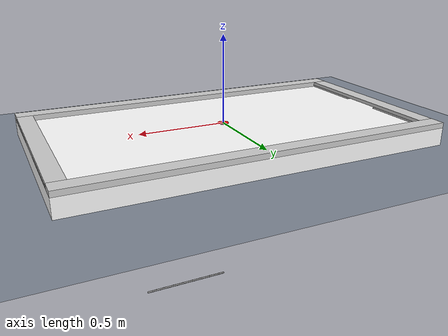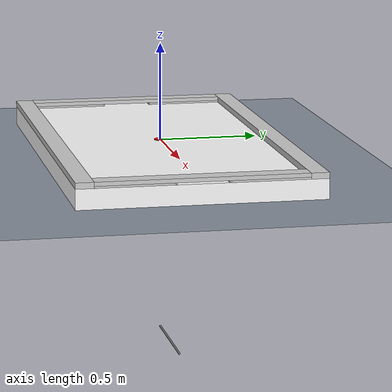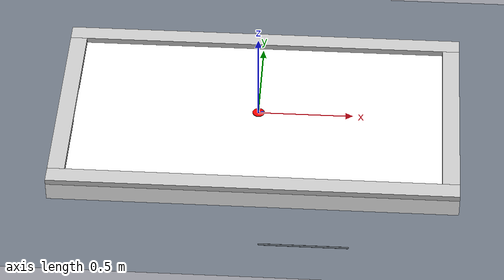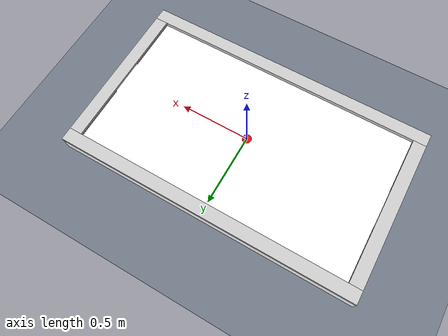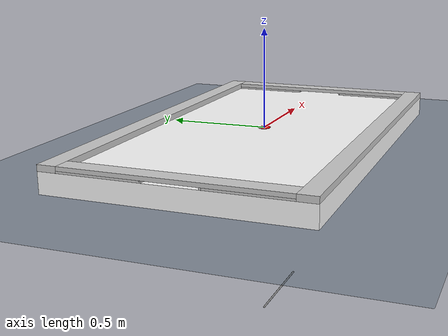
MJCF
<mujoco model="table">

    <option timestep="0.001" cone="elliptic" impratio="1"/>

    <asset>
        <material name="grey" specular="0.5" shininess="0.25" rgba="0.8 0.8 0.8 1"/>
        <material name="white" specular="0.5" shininess="0.25" rgba="1.0 1.0 1.0 1"/>
        <material name="red" specular="0.5" shininess="0.25" rgba="1.0 0.0 0.0 1"/>
        <material name="blue" specular="0.5" shininess="0.25" rgba="0.0 0.0 1.0 1"/>
        <material name="transparent" specular="0.5" shininess="0.25" rgba="0.0 0.0 1.0 0"/>

        <texture type="skybox" builtin="gradient" rgb1="0.3 0.5 0.7" rgb2="0 0 0" width="512"
                 height="3072"/>
        <texture type="2d" name="groundplane" builtin="checker" mark="edge" rgb1="0.2 0.3 0.4"
                 rgb2="0.1 0.2 0.3" markrgb="0.8 0.8 0.8" width="300" height="300"/>
        <material name="groundplane" texture="groundplane" texuniform="true" texrepeat="5 5"
                  reflectance="0.2"/>
    </asset>

    <default>
        <geom condim="4" solref="0.02 0.3"/>
        <default class="rim">
            <geom type="box" material="grey" condim="6" friction="10000 0.0 0.0" priority="1"
                  solref="-2000000 -250" solimp="0.99 0.999 0.001 0.5 2"/>
        </default>
    </default>

    <worldbody>
        <body name="table">
            <body name="table_surface">
                <geom name="surface" type="box" material="white" size="1.064 0.609 0.0505" pos="0 0 -0.0505"
                      condim="4" friction="0.08 0.08 0.0" priority="1"
                      solref="0.0125 0.5" solimp="0.9 0.999 0.001 0.5 2"/>
            </body>
            <body name="rim">

                <geom name="rim_home_l" class="rim" size="0.045 0.1945 0.005" pos="-1.019 0.3245 0.005"/>
                <geom name="rim_home_r" class="rim" size="0.045 0.1945 0.005" pos="-1.019 -0.3245 0.005"/>
                <geom name="rim_home_bound_l" class="rim" type="cylinder" size="0.005 0.005" pos="-0.979 0.13 0.005"/>
                <geom name="rim_home_bound_l_tail" class="rim" size="0.0425 0.005 0.005" pos="-1.0215 0.13 0.005"/>
                <geom name="rim_home_bound_r" class="rim" type="cylinder" size="0.005 0.005" pos="-0.979 -0.13 0.005"/>
                <geom name="rim_home_bound_r_tail" class="rim" size="0.0425 0.005 0.005" pos="-1.0215 -0.13 0.005"/>

                <geom name="rim_home_top" class="rim" size="0.045 0.519 0.01" pos="-1.019 0 0.02"/>

                <geom name="rim_left" class="rim" size="1.064 0.045 0.015" pos="0 0.564 0.015"/>
                <geom name="rim_right" class="rim" size="1.064 0.045 0.015" pos="0 -0.564 0.015"/>

                <geom name="rim_away_l" class="rim" size="0.045 0.1945 0.005" pos="1.019 0.3245 0.005"/>
                <geom name="rim_away_r" class="rim" size="0.045 0.1945 0.005" pos="1.019 -0.3245 0.005"/>
                <geom name="rim_away_bound_l" class="rim" type="cylinder" size="0.005 0.005" pos="0.979 0.13 0.005"/>
                <geom name="rim_away_bound_l_tail" class="rim" size="0.0425 0.005 0.005" pos="1.0215 0.13 0.005"/>
                <geom name="rim_away_bound_r" class="rim" type="cylinder" size="0.005 0.005" pos="0.979 -0.13 0.005"/>
                <geom name="rim_away_bound_r_tail" class="rim" size="0.0425 0.005 0.005" pos="1.0215 -0.13 0.005"/>
                <geom name="rim_away_top" class="rim" size="0.045 0.519 0.01" pos="1.019 0 0.02"/>
            </body>
        </body>

        <body name="base" pos="0 0 0">
            <joint name="puck_x" type="slide" axis="1 0 0" damping="0.005" limited="false"/>
            <joint name="puck_y" type="slide" axis="0 1 0" damping="0.005" limited="false"/>
            <joint name="puck_yaw" type="hinge" axis="0 0 1" damping="2e-6" limited="false"/>
            <body name="puck">
                <geom pos="0 0 0" name="puck" type="cylinder" material="red" size="0.03165 0.003"
                      condim="4" priority="0"/>
                <geom pos="0.02 0 0" type="cylinder" material="blue" size="0.01 0.0031"
                      condim="4" contype="0" conaffinity="0"/>
                <inertial pos="0 0 0" mass="0.01" diaginertia="2.5e-6 2.5e-6 5e-6"/>
            </body>
        </body>

        <site name="puck_vis" type="ellipsoid" size="0.03165 0.03165 0.004" pos="0 0 -0.05"/>
        <site name="puck_vis_rot" type="cylinder" size="0.0045 0.006" rgba="1 0 0 1" pos="0 0 -0.05"/>
        <site name="goal_vis" type="cylinder" size="0.1 0.01" rgba="0 1 0 0.5" pos="0 0 -0.05"/>
        <site name="direction" type="capsule" pos="0 0 0" fromto="0 0 -1 0.5 0 -1" size="0.005"/>

    </worldbody>

    <contact>
        <exclude body1="puck" body2="table_surface"/>
    </contact>

    <worldbody>
        <light pos="0 0 3" dir="0 0 -1" directional="true"/>
        <geom pos="0 0 -0.1" name="floor" size="0 0 0.05" type="plane" material="groundplane"/>
    </worldbody>
</mujoco>
